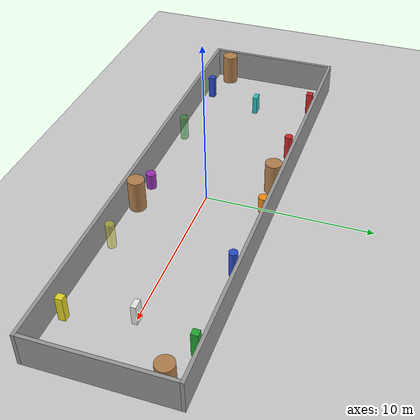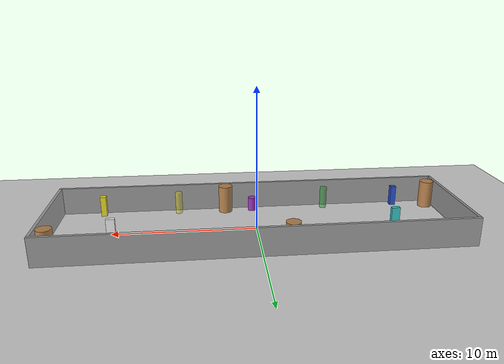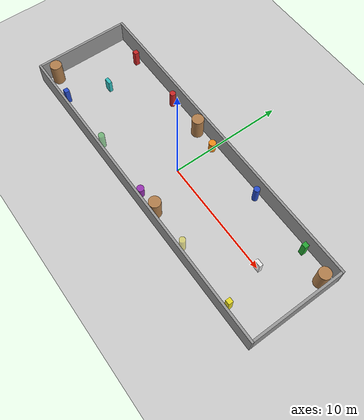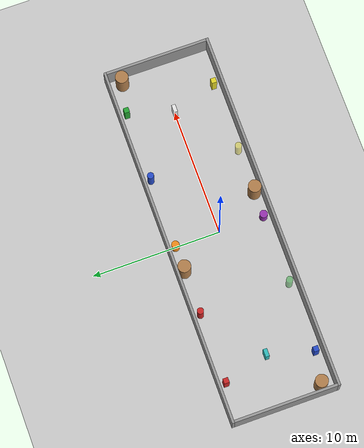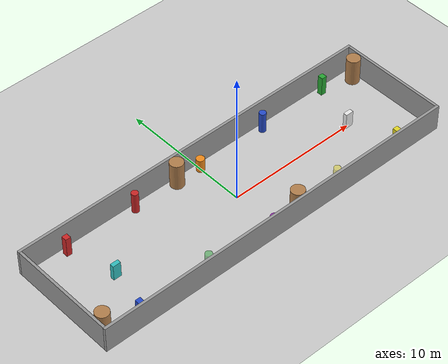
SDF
<?xml version="1.0" ?>
<sdf version="1.6">
  <world name="hallway_world">

    <!-- Physics -->
    <physics name="default_physics" default="0" type="ode">
      <max_step_size>0.001</max_step_size>
      <real_time_factor>1.0</real_time_factor>
      <real_time_update_rate>1000</real_time_update_rate>
    </physics>

    <!-- Lighting -->
    <include>
      <uri>model://sun</uri>
    </include>

    <!-- Ground Plane -->
    <model name="ground_plane">
      <static>true</static>
      <link name="link">
        <collision name="collision">
          <geometry>
            <plane>
              <normal>0 0 1</normal>
              <size>34 10</size>
            </plane>
          </geometry>
        </collision>
        <visual name="visual">
          <geometry>
            <plane>
              <normal>0 0 1</normal>
              <size>34 10</size>
            </plane>
          </geometry>
          <material>
            <script>
              <uri>file://media/materials/scripts/gazebo.material</uri>
              <name>Gazebo/Concrete</name>
            </script>
          </material>
        </visual>
      </link>
    </model>

    <!-- North Wall (top) -->
    <model name="north_wall">
      <static>true</static>
      <pose>0 4.1 1 0 0 0</pose>
      <link name="link">
        <collision name="collision">
          <geometry>
            <box>
              <size>28.4 0.2 2</size>
            </box>
          </geometry>
        </collision>
        <visual name="visual">
          <geometry>
            <box>
              <size>28.4 0.2 2</size>
            </box>
          </geometry>
          <material>
            <script>
              <uri>file://media/materials/scripts/gazebo.material</uri>
              <name>Gazebo/Grey</name>
            </script>
          </material>
        </visual>
      </link>
    </model>

    <!-- South Wall (bottom) -->
    <model name="south_wall">
      <static>true</static>
      <pose>0 -4.1 1 0 0 0</pose>
      <link name="link">
        <collision name="collision">
          <geometry>
            <box>
              <size>28.4 0.2 2</size>
            </box>
          </geometry>
        </collision>
        <visual name="visual">
          <geometry>
            <box>
              <size>28.4 0.2 2</size>
            </box>
          </geometry>
          <material>
            <script>
              <uri>file://media/materials/scripts/gazebo.material</uri>
              <name>Gazebo/Grey</name>
            </script>
          </material>
        </visual>
      </link>
    </model>

    <!-- West Wall (left) -->
    <model name="west_wall">
      <static>true</static>
      <pose>-14.1 0 1 0 0 0</pose>
      <link name="link">
        <collision name="collision">
          <geometry>
            <box>
              <size>0.2 8 2</size>
            </box>
          </geometry>
        </collision>
        <visual name="visual">
          <geometry>
            <box>
              <size>0.2 8 2</size>
            </box>
          </geometry>
          <material>
            <script>
              <uri>file://media/materials/scripts/gazebo.material</uri>
              <name>Gazebo/Grey</name>
            </script>
          </material>
        </visual>
      </link>
    </model>

    <!-- East Wall (right) -->
    <model name="east_wall">
      <static>true</static>
      <pose>14.1 0 1 0 0 0</pose>
      <link name="link">
        <collision name="collision">
          <geometry>
            <box>
              <size>0.2 8 2</size>
            </box>
          </geometry>
        </collision>
        <visual name="visual">
          <geometry>
            <box>
              <size>0.2 8 2</size>
            </box>
          </geometry>
          <material>
            <script>
              <uri>file://media/materials/scripts/gazebo.material</uri>
              <name>Gazebo/Grey</name>
            </script>
          </material>
        </visual>
      </link>
    </model>

    <!-- Left Pillar/Obstacle (near west wall, 5 cm gap) -->
<model name="left_pillar">
  <static>true</static>
  <pose>-13.45 -3 1 0 0 0</pose>
  <link name="link">
    <collision name="collision">
      <geometry>
        <cylinder>
          <radius>0.5</radius>
          <length>2</length>
        </cylinder>
      </geometry>
    </collision>
    <visual name="visual">
      <geometry>
        <cylinder>
          <radius>0.5</radius>
          <length>2</length>
        </cylinder>
      </geometry>
      <material>
        <script>
          <uri>file://media/materials/scripts/gazebo.material</uri>
          <name>Gazebo/Wood</name>
        </script>
      </material>
    </visual>
  </link>
</model>

<!-- Right Pillar/Obstacle (near east wall, 5 cm gap) -->
<model name="right_pillar">
  <static>true</static>
  <pose>13.45 3 1 0 0 0</pose>
  <link name="link">
    <collision name="collision">
      <geometry>
        <cylinder>
          <radius>0.5</radius>
          <length>2</length>
        </cylinder>
      </geometry>
    </collision>
    <visual name="visual">
      <geometry>
        <cylinder>
          <radius>0.5</radius>
          <length>2</length>
        </cylinder>
      </geometry>
      <material>
        <script>
          <uri>file://media/materials/scripts/gazebo.material</uri>
          <name>Gazebo/Wood</name>
        </script>
      </material>
    </visual>
  </link>
</model>

<!-- Right3 Pillar/Obstacle (near east wall, 5 cm gap) -->
<model name="right3_pillar">
  <static>true</static>
  <pose>2 -3.5 1 0 0 0</pose>
  <link name="link">
    <collision name="collision">
      <geometry>
        <cylinder>
          <radius>0.5</radius>
          <length>2</length>
        </cylinder>
      </geometry>
    </collision>
    <visual name="visual">
      <geometry>
        <cylinder>
          <radius>0.5</radius>
          <length>2</length>
        </cylinder>
      </geometry>
      <material>
        <script>
          <uri>file://media/materials/scripts/gazebo.material</uri>
          <name>Gazebo/Wood</name>
        </script>
      </material>
    </visual>
  </link>
</model>

<!-- Right2 Pillar/Obstacle (near west wall, 5 cm gap) -->
<model name="right2_pillar">
  <static>true</static>
  <pose>-2 3.5 1 0 0 0</pose>
  <link name="link">
    <collision name="collision">
      <geometry>
        <cylinder>
          <radius>0.5</radius>
          <length>2</length>
        </cylinder>
      </geometry>
    </collision>
    <visual name="visual">
      <geometry>
        <cylinder>
          <radius>0.5</radius>
          <length>2</length>
        </cylinder>
      </geometry>
      <material>
        <script>
          <uri>file://media/materials/scripts/gazebo.material</uri>
          <name>Gazebo/Wood</name>
        </script>
      </material>
    </visual>
  </link>
</model>

<!-- Tall Box Landmark 1 (NW corner) -->
<model name="landmark_box_1">
  <static>true</static>
  <pose>-11 3.5 0.75 0 0 0</pose>
  <link name="link">
    <collision name="collision">
      <geometry>
        <box>
          <size>0.4 0.4 1.5</size>
        </box>
      </geometry>
    </collision>
    <visual name="visual">
      <geometry>
        <box>
          <size>0.4 0.4 1.5</size>
        </box>
      </geometry>
      <material>
        <script>
          <uri>file://media/materials/scripts/gazebo.material</uri>
          <name>Gazebo/Red</name>
        </script>
      </material>
    </visual>
  </link>
</model>

<!-- Tall Box Landmark 2 (SW corner) -->
<model name="landmark_box_2">
  <static>true</static>
  <pose>-11 -3.5 0.75 0 0 0</pose>
  <link name="link">
    <collision name="collision">
      <geometry>
        <box>
          <size>0.4 0.4 1.5</size>
        </box>
      </geometry>
    </collision>
    <visual name="visual">
      <geometry>
        <box>
          <size>0.4 0.4 1.5</size>
        </box>
      </geometry>
      <material>
        <script>
          <uri>file://media/materials/scripts/gazebo.material</uri>
          <name>Gazebo/Blue</name>
        </script>
      </material>
    </visual>
  </link>
</model>

<!-- Tall Box Landmark 3 (NE corner) -->
<model name="landmark_box_3">
  <static>true</static>
  <pose>11 3.5 0.75 0 0 0</pose>
  <link name="link">
    <collision name="collision">
      <geometry>
        <box>
          <size>0.4 0.4 1.5</size>
        </box>
      </geometry>
    </collision>
    <visual name="visual">
      <geometry>
        <box>
          <size>0.4 0.4 1.5</size>
        </box>
      </geometry>
      <material>
        <script>
          <uri>file://media/materials/scripts/gazebo.material</uri>
          <name>Gazebo/Green</name>
        </script>
      </material>
    </visual>
  </link>
</model>

<!-- Tall Box Landmark 4 (SE corner) -->
<model name="landmark_box_4">
  <static>true</static>
  <pose>11 -3.5 0.75 0 0 0</pose>
  <link name="link">
    <collision name="collision">
      <geometry>
        <box>
          <size>0.4 0.4 1.5</size>
        </box>
      </geometry>
    </collision>
    <visual name="visual">
      <geometry>
        <box>
          <size>0.4 0.4 1.5</size>
        </box>
      </geometry>
      <material>
        <script>
          <uri>file://media/materials/scripts/gazebo.material</uri>
          <name>Gazebo/Yellow</name>
        </script>
      </material>
    </visual>
  </link>
</model>

<!-- Short Cylinder Landmark 5 (Center North) -->
<model name="landmark_cyl_1">
  <static>true</static>
  <pose>0 3.5 0.5 0 0 0</pose>
  <link name="link">
    <collision name="collision">
      <geometry>
        <cylinder>
          <radius>0.3</radius>
          <length>1.0</length>
        </cylinder>
      </geometry>
    </collision>
    <visual name="visual">
      <geometry>
        <cylinder>
          <radius>0.3</radius>
          <length>1.0</length>
        </cylinder>
      </geometry>
      <material>
        <script>
          <uri>file://media/materials/scripts/gazebo.material</uri>
          <name>Gazebo/Orange</name>
        </script>
      </material>
    </visual>
  </link>
</model>

<!-- Short Cylinder Landmark 6 (Center South) -->
<model name="landmark_cyl_2">
  <static>true</static>
  <pose>0 -3.5 0.5 0 0 0</pose>
  <link name="link">
    <collision name="collision">
      <geometry>
        <cylinder>
          <radius>0.3</radius>
          <length>1.0</length>
        </cylinder>
      </geometry>
    </collision>
    <visual name="visual">
      <geometry>
        <cylinder>
          <radius>0.3</radius>
          <length>1.0</length>
        </cylinder>
      </geometry>
      <material>
        <script>
          <uri>file://media/materials/scripts/gazebo.material</uri>
          <name>Gazebo/Purple</name>
        </script>
      </material>
    </visual>
  </link>
</model>

<!-- Wide Box Landmark 7 (West mid) -->
<model name="landmark_box_5">
  <static>true</static>
  <pose>-10 0 0.6 0 0 0</pose>
  <link name="link">
    <collision name="collision">
      <geometry>
        <box>
          <size>0.6 0.3 1.2</size>
        </box>
      </geometry>
    </collision>
    <visual name="visual">
      <geometry>
        <box>
          <size>0.6 0.3 1.2</size>
        </box>
      </geometry>
      <material>
        <script>
          <uri>file://media/materials/scripts/gazebo.material</uri>
          <name>Gazebo/Turquoise</name>
        </script>
      </material>
    </visual>
  </link>
</model>

<!-- Wide Box Landmark 8 (East mid) -->
<model name="landmark_box_6">
  <static>true</static>
  <pose>10 0 0.6 0 0 0</pose>
  <link name="link">
    <collision name="collision">
      <geometry>
        <box>
          <size>0.6 0.3 1.2</size>
        </box>
      </geometry>
    </collision>
    <visual name="visual">
      <geometry>
        <box>
          <size>0.6 0.3 1.2</size>
        </box>
      </geometry>
      <material>
        <script>
          <uri>file://media/materials/scripts/gazebo.material</uri>
          <name>Gazebo/White</name>
        </script>
      </material>
    </visual>
  </link>
</model>

<!-- Tall Cylinder Landmark 9 (Mid West North) -->
<model name="landmark_cyl_3">
  <static>true</static>
  <pose>-5.5 3.5 0.8 0 0 0</pose>
  <link name="link">
    <collision name="collision">
      <geometry>
        <cylinder>
          <radius>0.25</radius>
          <length>1.6</length>
        </cylinder>
      </geometry>
    </collision>
    <visual name="visual">
      <geometry>
        <cylinder>
          <radius>0.25</radius>
          <length>1.6</length>
        </cylinder>
      </geometry>
      <material>
        <script>
          <uri>file://media/materials/scripts/gazebo.material</uri>
          <name>Gazebo/RedBright</name>
        </script>
      </material>
    </visual>
  </link>
</model>

<!-- Tall Cylinder Landmark 10 (Mid East North) -->
<model name="landmark_cyl_4">
  <static>true</static>
  <pose>5.5 3.5 0.8 0 0 0</pose>
  <link name="link">
    <collision name="collision">
      <geometry>
        <cylinder>
          <radius>0.25</radius>
          <length>1.6</length>
        </cylinder>
      </geometry>
    </collision>
    <visual name="visual">
      <geometry>
        <cylinder>
          <radius>0.25</radius>
          <length>1.6</length>
        </cylinder>
      </geometry>
      <material>
        <script>
          <uri>file://media/materials/scripts/gazebo.material</uri>
          <name>Gazebo/BlueLaser</name>
        </script>
      </material>
    </visual>
  </link>
</model>

<!-- Tall Cylinder Landmark 11 (Mid West South) -->
<model name="landmark_cyl_5">
  <static>true</static>
  <pose>-5.5 -3.5 0.8 0 0 0</pose>
  <link name="link">
    <collision name="collision">
      <geometry>
        <cylinder>
          <radius>0.25</radius>
          <length>1.6</length>
        </cylinder>
      </geometry>
    </collision>
    <visual name="visual">
      <geometry>
        <cylinder>
          <radius>0.25</radius>
          <length>1.6</length>
        </cylinder>
      </geometry>
      <material>
        <script>
          <uri>file://media/materials/scripts/gazebo.material</uri>
          <name>Gazebo/GreenTransparent</name>
        </script>
      </material>
    </visual>
  </link>
</model>

<!-- Tall Cylinder Landmark 12 (Mid East South) -->
<model name="landmark_cyl_6">
  <static>true</static>
  <pose>5.5 -3.5 0.8 0 0 0</pose>
  <link name="link">
    <collision name="collision">
      <geometry>
        <cylinder>
          <radius>0.25</radius>
          <length>1.6</length>
        </cylinder>
      </geometry>
    </collision>
    <visual name="visual">
      <geometry>
        <cylinder>
          <radius>0.25</radius>
          <length>1.6</length>
        </cylinder>
      </geometry>
      <material>
        <script>
          <uri>file://media/materials/scripts/gazebo.material</uri>
          <name>Gazebo/YellowTransparent</name>
        </script>
      </material>
    </visual>
  </link>
</model>

    <!-- Scene -->
    <scene>
      <ambient>0.4 0.4 0.4 1</ambient>
      <background>0.7 0.7 0.7 1</background>
      <shadows>true</shadows>
    </scene>

    <!-- GUI -->
    <gui fullscreen='0'>
      <camera name='user_camera'>
        <pose frame=''>0 -15 8 0 0.5 1.57</pose>
        <view_controller>orbit</view_controller>
        <projection_type>perspective</projection_type>
      </camera>
    </gui>

  </world>
</sdf>
